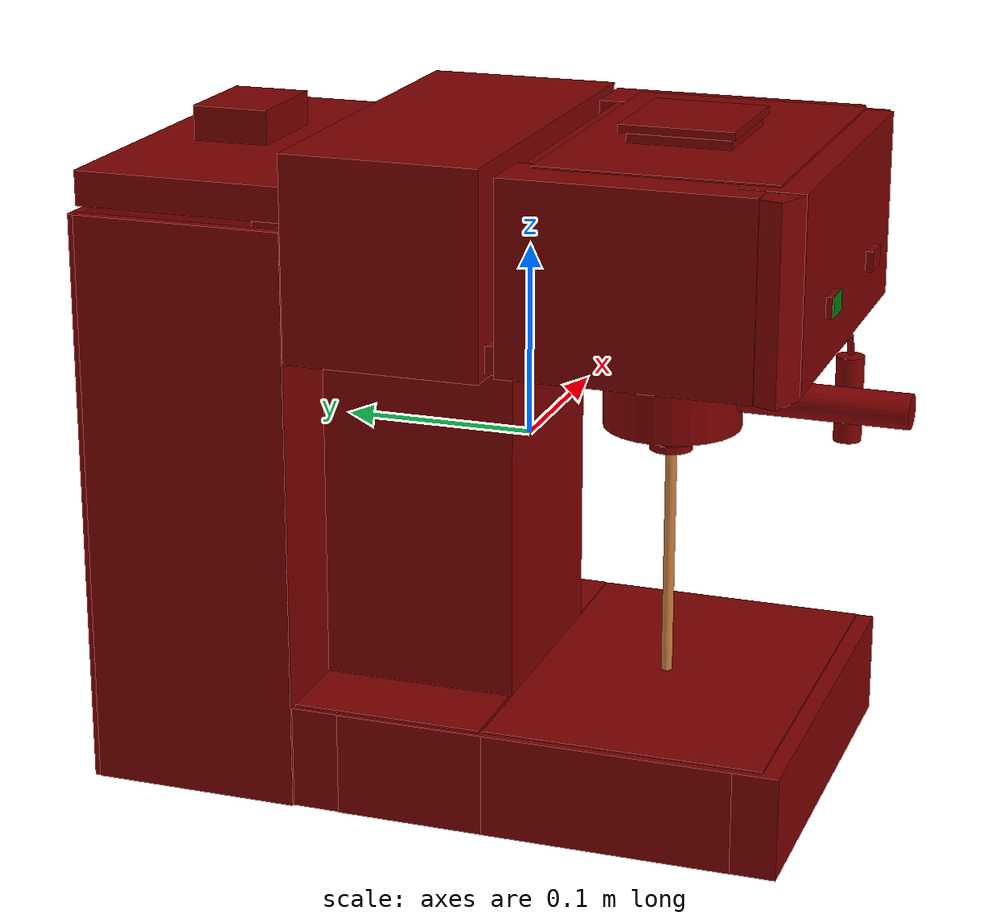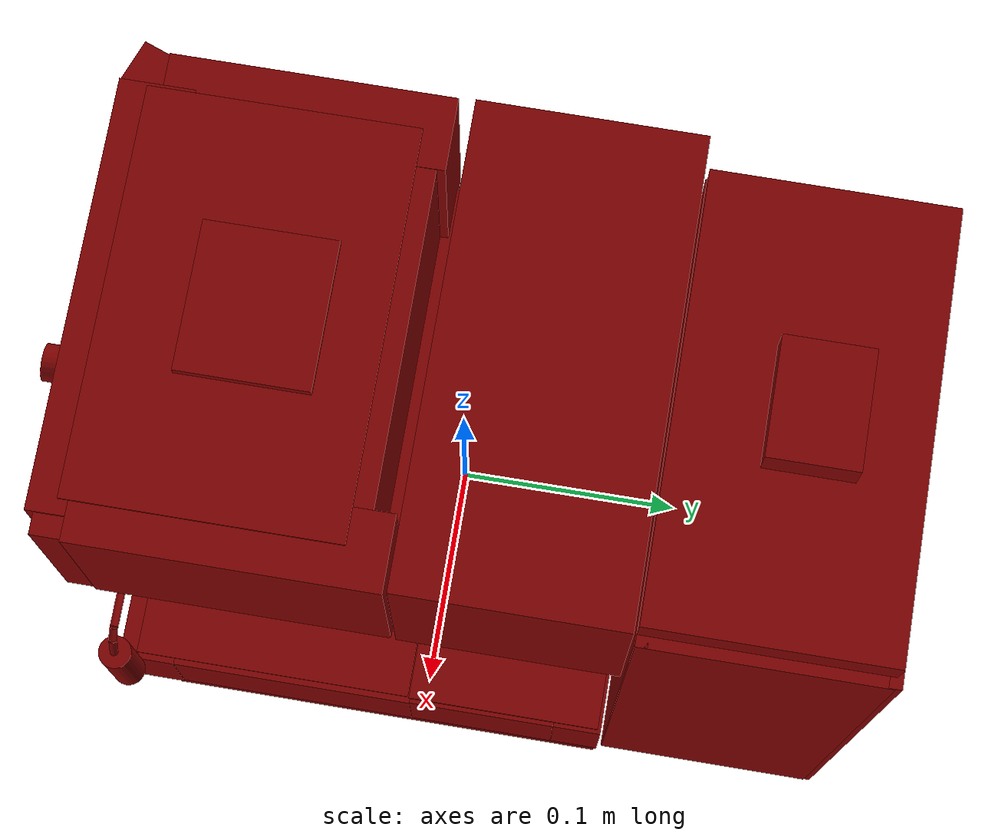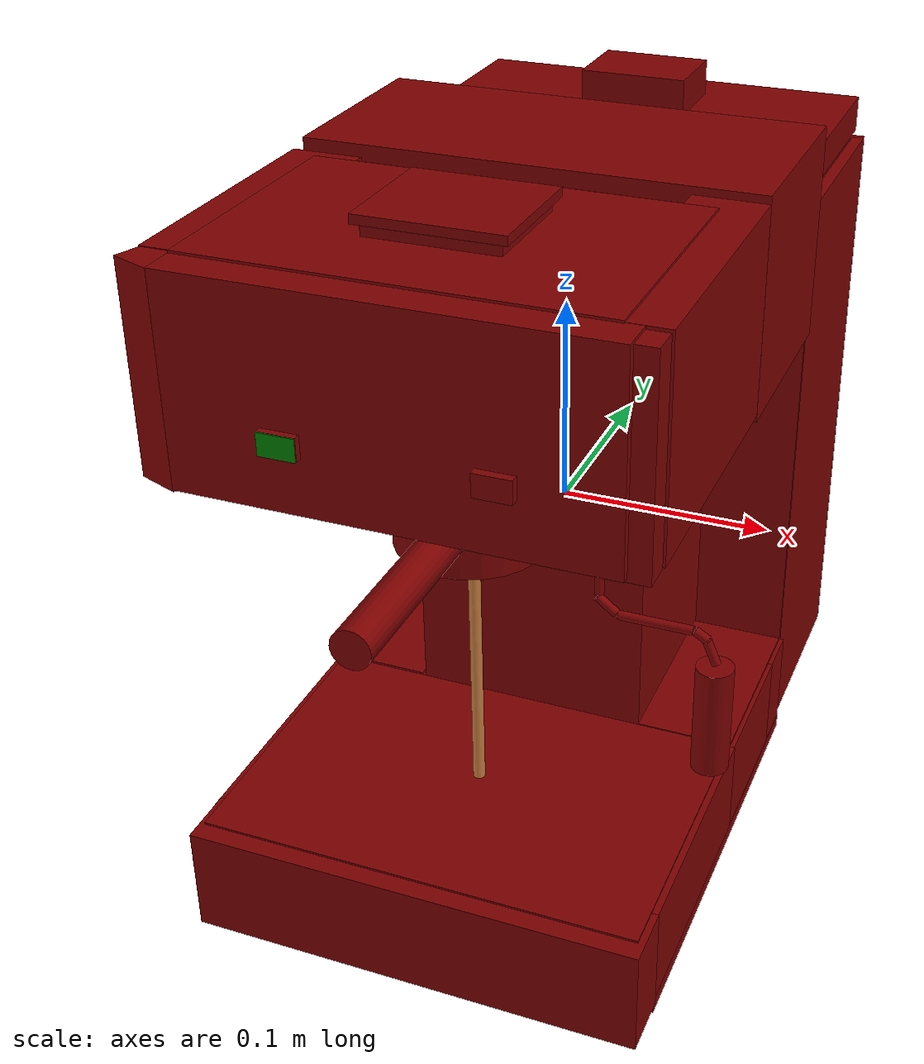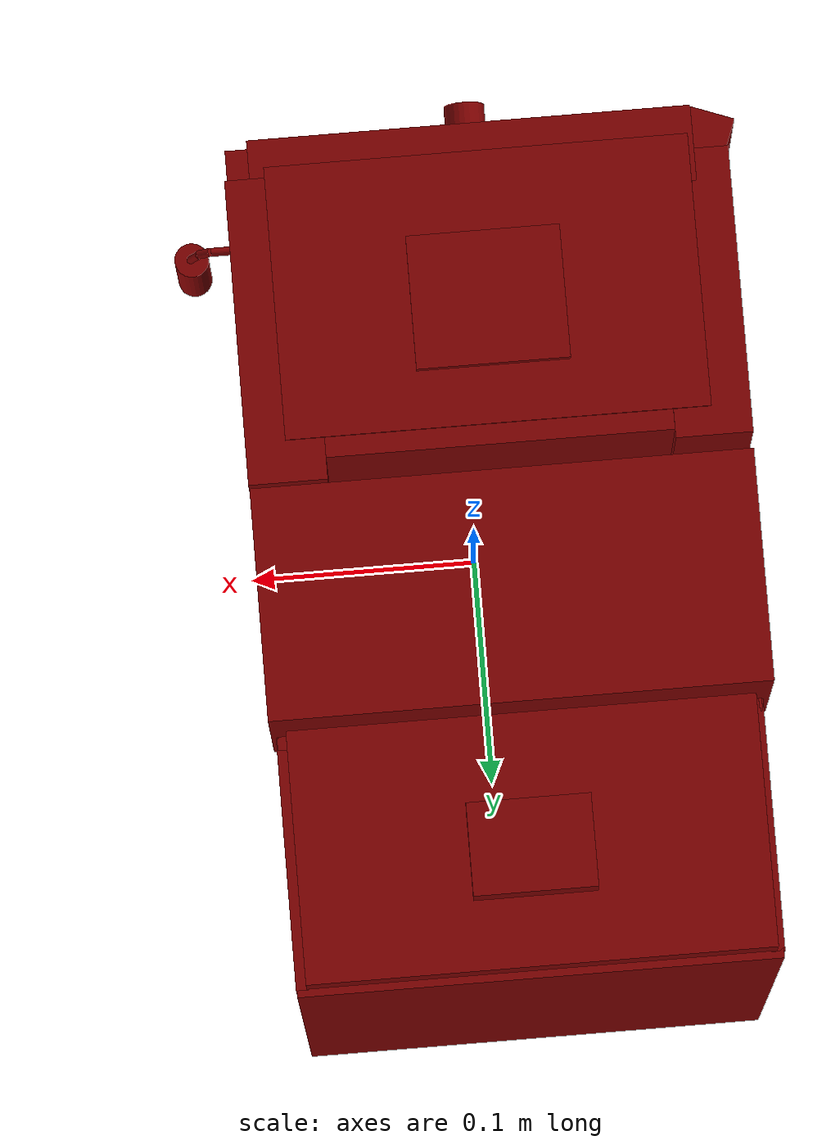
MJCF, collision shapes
<?xml version='1.0' encoding='UTF-8'?>
<mujoco model="model">
  <compiler angle="radian"/>
  <asset>
    <mesh file="visuals/Body001.obj" name="Body001_vis"/>
    <mesh file="visuals/Button001.obj" name="Button001_vis"/>
    <mesh file="visuals/Button002.obj" name="Button002_vis"/>
    <mesh file="visuals/Container001.obj" name="Container001_vis"/>
    <mesh file="visuals/Lever001.obj" name="Lever001_vis"/>
    <mesh file="visuals/Lever002.obj" name="Lever002_vis"/>
    <mesh file="visuals/Lid001.obj" name="Lid001_vis"/>
    <mesh file="visuals/Lid002.obj" name="Lid002_vis"/>
    <mesh file="visuals/Lid003.obj" name="Lid003_vis"/>
    <texture file="visuals/T_BC001.png" name="Body001_material" type="2d"/>
    <material name="Body001_material" rgba="1 1 1 1.0" texture="Body001_material" shininess="0.48321622610092163" specular="0.3103448502657381"/>
    <texture file="visuals/T_BC001.png" name="Button001_material" type="2d"/>
    <material name="Button001_material" rgba="1 1 1 1.0" texture="Button001_material" shininess="0.48321622610092163" specular="0.3103448502657381"/>
    <texture file="visuals/T_BC001.png" name="Button002_material" type="2d"/>
    <material name="Button002_material" rgba="1 1 1 1.0" texture="Button002_material" shininess="0.48321622610092163" specular="0.3103448502657381"/>
    <texture file="visuals/T_BC001.png" name="Container001_material" type="2d"/>
    <material name="Container001_material" rgba="1 1 1 1.0" texture="Container001_material" shininess="0.48321622610092163" specular="0.3103448502657381"/>
    <texture file="visuals/T_BC001.png" name="Lid003_material" type="2d"/>
    <material name="Lid003_material" rgba="1 1 1 1.0" texture="Lid003_material" shininess="0.48321622610092163" specular="0.3103448502657381"/>
    <texture file="visuals/T_BC001.png" name="Lever001_material" type="2d"/>
    <material name="Lever001_material" rgba="1 1 1 1.0" texture="Lever001_material" shininess="0.48321622610092163" specular="0.3103448502657381"/>
    <texture file="visuals/T_BC001.png" name="Lever002_material" type="2d"/>
    <material name="Lever002_material" rgba="1 1 1 1.0" texture="Lever002_material" shininess="0.48321622610092163" specular="0.3103448502657381"/>
    <texture file="visuals/T_BC001.png" name="Lid001_material" type="2d"/>
    <material name="Lid001_material" rgba="1 1 1 1.0" texture="Lid001_material" shininess="0.48321622610092163" specular="0.3103448502657381"/>
    <texture file="visuals/T_BC001.png" name="Lid002_material" type="2d"/>
    <material name="Lid002_material" rgba="1 1 1 1.0" texture="Lid002_material" shininess="0.48321622610092163" specular="0.3103448502657381"/>
  </asset>
  <default>
    <default class="visual">
      <geom conaffinity="0" contype="0" group="1" type="mesh"/>
    </default>
    <default class="collision">
      <geom group="0" rgba="0.5 0 0 0.5"/>
    </default>
    <default class="spawn">
      <geom group="0" rgba="1 1 1 0.5" contype="0" conaffinity="0"/>
      <site group="0" rgba="1 1 1 0.5"/>
    </default>
    <default class="region">
      <geom group="1" conaffinity="0" contype="0" rgba="0 1 0 0"/>
    </default>
  </default>
  <worldbody>
    <body>
      <body name="object">
        <geom class="collision" type="box" pos="-0.054994 -0.171039 0.099775" size="0.008375359699130058 0.00021982569887768477 0.005196996498852968" quat="1.0 0.0 0.0 0.0" name="start_button" rgba="0.0 0.5 0 0.5"/>
        <site rgba="0 0 0 0" size="0.009999999776482582 0.01000000536441803" pos="-0.013528 -0.080261 -0.121461" name="receptacle_place_site"/>
        <site type="cylinder" rgba="0.8 0.5 0.25 1" size="0.002856658771634102 0.08836696296930313" pos="-0.013528 -0.080261 -0.082463" name="coffee_liquid"/>
        <geom mesh="Body001_vis" type="mesh" solimp="0.998 0.998 0.001" solref="0.001 1" density="100" friction="0.95 0.3 0.1" class="visual" material="Body001_material"/>
        <geom class="collision" type="box" pos="-0.013117 -0.152401 -0.144815" size="0.10881462693214417 0.014149883762001991 0.02684701234102249" quat="1.0 0.0 0.0 0.0"/>
        <geom class="collision" type="box" pos="0.085223 -0.077408 -0.144815" size="0.010351155884563923 0.06306789815425873 0.02684696950018406" quat="1.0 0.0 0.0 0.0"/>
        <geom class="collision" type="box" pos="-0.114215 -0.079544 -0.144815" size="0.007914726622402668 0.0638255774974823 0.026846928521990776" quat="1.0 0.0 0.0 0.0"/>
        <geom class="collision" type="box" pos="-0.013181 0.035480 0.115029" size="0.10816680639982224 0.050317589193582535 0.052090954035520554" quat="1.0 0.0 0.0 0.0"/>
        <geom class="collision" type="box" pos="-0.105302 -0.085089 0.115491" size="0.016680840402841568 0.06265630573034286 0.048455651849508286" quat="1.0 0.0 0.0 0.0"/>
        <geom class="collision" type="box" pos="-0.011245 -0.150103 0.116119" size="0.09591840207576752 0.016643624752759933 0.04792249947786331" quat="1.0 0.0 0.0 0.0"/>
        <geom class="collision" type="box" pos="0.078408 -0.083357 0.115611" size="0.01700516976416111 0.06653179228305817 0.04857500642538071" quat="1.0 0.0 0.0 0.0"/>
        <geom class="collision" type="box" pos="-0.016331 -0.030309 0.072814" size="0.0962309017777443 0.11114870011806488 0.00712256645783782" quat="1.0 0.0 0.0 0.0"/>
        <geom class="collision" type="box" pos="0.069847 0.019684 -0.144815" size="0.025481464341282845 0.04093810170888901 0.02684563212096691" quat="1.0 0.0 0.0 0.0"/>
        <geom class="collision" type="box" pos="-0.013735 0.082538 -0.144815" size="0.05734142288565636 0.003191176801919937 0.02684563212096691" quat="1.0 0.0 0.0 0.0"/>
        <geom class="collision" type="box" pos="-0.013735 -0.016746 -0.144815" size="0.05734142288565636 0.003708104370161891 0.02684563212096691" quat="1.0 0.0 0.0 0.0"/>
        <geom class="collision" type="box" pos="-0.015825 -0.080951 -0.169483" size="0.09187614917755127 0.059765566140413284 0.0021778345108032227" quat="1.0 0.0 0.0 0.0"/>
        <geom class="collision" type="box" pos="-0.013196 0.073081 -0.144815" size="0.10845345258712769 0.012312578037381172 0.02684563212096691" quat="1.0 0.0 0.0 0.0"/>
        <geom class="collision" type="box" pos="-0.096648 0.019946 -0.144815" size="0.025481464341282845 0.0409381128847599 0.026845648884773254" quat="1.0 0.0 0.0 0.0"/>
        <geom class="collision" type="box" pos="0.084334 -0.153681 0.114439" size="0.009914115071296692 0.009495524689555168 0.04830016940832138" quat="1.0 0.0 0.0 0.0"/>
        <geom class="collision" type="box" pos="-0.113074 -0.153847 0.115257" size="0.009495515376329422 0.009914172813296318 0.04830016940832138" quat="0.5686398148536682 0.0 0.0 -0.8225865960121155"/>
        <geom class="collision" type="box" pos="-0.014018 -0.031434 0.118649" size="0.07952450960874557 0.00518407765775919 0.0449129156768322" quat="1.0 0.0 0.0 0.0"/>
        <geom class="collision" type="box" pos="-0.009539 -0.028108 -0.171619" size="0.10511379688978195 0.1123671904206276 0.003568801796063781" quat="1.0 0.0 0.0 0.0"/>
        <geom class="collision" type="box" pos="-0.013024 0.035480 -0.055497" size="0.05856454372406006 0.050317589193582535 0.1207728460431099" quat="1.0 0.0 0.0 0.0"/>
        <geom class="collision" type="cylinder" pos="-0.013533 -0.079915 0.058403" size="0.04938850179314613 0.008941341191530228" quat="1.0 0.0 0.0 0.0"/>
        <geom class="collision" type="cylinder" pos="0.067571 -0.143409 0.063547" size="0.0074094850569963455 0.005022606812417507" quat="1.0 0.0 0.0 0.0"/>
        <body name="Button001">
          <joint axis="0.0 1.0 0.0" pos="-0.056242 -0.168444 0.099785" limited="true" name="Button001_joint" range="0.0 0.002" type="slide" damping="1" frictionloss="1" armature=".01" stiffness="0.05"/>
          <geom mesh="Button001_vis" type="mesh" solimp="0.998 0.998 0.001" solref="0.001 1" density="100" friction="0.95 0.3 0.1" class="visual" material="Button001_material"/>
          <geom class="collision" type="box" pos="-0.054994 -0.168947 0.099775" size="0.008375359699130058 0.0015938704600557685 0.005196996498852968" quat="1.0 0.0 0.0 0.0"/>
        </body>
        <body name="Button002">
          <joint axis="0.0 1.0 0.0" pos="0.034224 -0.168444 0.100381" limited="true" name="Button002_joint" range="0.0 0.002" type="slide" damping="1" frictionloss="1" armature=".01" stiffness="0.05"/>
          <geom mesh="Button002_vis" type="mesh" solimp="0.998 0.998 0.001" solref="0.001 1" density="100" friction="0.95 0.3 0.1" class="visual" material="Button002_material"/>
          <geom class="collision" type="box" pos="0.034379 -0.169306 0.099775" size="0.008375358767807484 0.0019528644625097513 0.005196996498852968" quat="1.0 0.0 0.0 0.0"/>
        </body>
        <body name="Container001">
          <joint axis="0.0 0.0 1.0" pos="-0.013156 0.143773 -0.022431" limited="true" name="Container001_joint" range="0.0 0.06" type="slide" damping="1" frictionloss="1" armature=".01" stiffness="0.05"/>
          <geom mesh="Container001_vis" type="mesh" solimp="0.998 0.998 0.001" solref="0.001 1" density="100" friction="0.95 0.3 0.1" class="visual" material="Container001_material"/>
          <geom class="collision" type="box" pos="-0.012345 0.090626 -0.023505" size="0.1047859638929367 0.0029388372786343098 0.15102222561836243" quat="1.0 0.0 0.0 0.0"/>
          <geom class="collision" type="box" pos="-0.012345 0.197612 -0.023505" size="0.1047859638929367 0.0029388372786343098 0.15102222561836243" quat="1.0 0.0 0.0 0.0"/>
          <geom class="collision" type="box" pos="-0.114747 0.142865 -0.023505" size="0.0029388456605374813 0.05468353256583214 0.15102222561836243" quat="1.0 0.0 0.0 0.0"/>
          <geom class="collision" type="box" pos="0.089829 0.142865 -0.023505" size="0.0029388456605374813 0.05468353256583214 0.15102222561836243" quat="1.0 0.0 0.0 0.0"/>
          <geom class="collision" type="box" pos="-0.012905 0.142865 -0.171429" size="0.10103803873062134 0.05468355491757393 0.003098243148997426" quat="1.0 0.0 0.0 0.0"/>
          <body name="Lid003">
            <joint axis="0.0 0.0 1.0" pos="-0.013156 0.143773 0.148686" limited="true" name="Lid003_joint" range="0.0 0.08" type="slide" damping="1" frictionloss="1" armature=".01" stiffness="0.05"/>
            <geom mesh="Lid003_vis" type="mesh" solimp="0.998 0.998 0.001" solref="0.001 1" density="100" friction="0.95 0.3 0.1" class="visual" material="Lid003_material"/>
            <geom class="collision" type="box" pos="-0.012905 0.142865 0.140052" size="0.10103803873062134 0.05468355491757393 0.008904940448701382" quat="1.0 0.0 0.0 0.0"/>
            <geom class="collision" type="box" pos="-0.012644 0.147474 0.159638" size="0.02669331058859825 0.020041514188051224 0.008904940448701382" quat="1.0 0.0 0.0 0.0"/>
          </body>
        </body>
        <body name="Lever001">
          <joint axis="0.0 0.0 1.0" pos="-0.013533 -0.080322 0.038797" limited="true" name="Lever001_joint" range="-0.7853981633974483 0.7853981633974483" type="hinge" damping="1" frictionloss="1" armature=".01" stiffness="0.01" springref="-0.1"/>
          <geom mesh="Lever001_vis" type="mesh" solimp="0.998 0.998 0.001" solref="0.001 1" density="100" friction="0.95 0.3 0.1" class="visual" material="Lever001_material"/>
          <geom class="collision" type="cylinder" pos="-0.011769 -0.149727 0.036175" size="0.009019842371344566 0.05160938575863838" quat="0.5013774633407593 -0.49861934781074524 0.5013785362243652 0.498617023229599"/>
          <geom class="collision" type="cylinder" pos="-0.013758 -0.080535 0.032434" size="0.03529611602425575 0.014974398538470268" quat="1.0 0.0 0.0 0.0"/>
          <geom class="collision" type="cylinder" pos="-0.013484 -0.080090 0.013288" size="0.015935303643345833 0.003136536804959178" quat="1.0 0.0 0.0 0.0"/>
          <geom class="collision" type="cylinder" pos="-0.013484 -0.080090 0.006513" size="0.011108371429145336 0.0020480183884501457" quat="1.0 0.0 0.0 0.0"/>
        </body>
        <body name="Lever002">
          <joint axis="0.0 0.0 1.0" pos="0.067218 -0.143670 0.061381" limited="true" name="Lever002_joint" range="-1.5707963267948966 1.5707963267948966" type="hinge" damping="1" frictionloss="1" armature=".01" stiffness="0.01" springref="-0.1"/>
          <geom mesh="Lever002_vis" type="mesh" solimp="0.998 0.998 0.001" solref="0.001 1" density="100" friction="0.95 0.3 0.1" class="visual" material="Lever002_material"/>
          <geom class="collision" type="cylinder" pos="0.115223 -0.143814 -0.000909" size="0.007664957549422979 0.02387719601392746" quat="0.4995230436325073 0.0 0.0 -0.8663005828857422"/>
          <geom class="collision" type="cylinder" pos="0.113558 -0.143883 0.029261" size="0.0019141915254294872 0.005277842283248901" quat="0.9795157313346863 0.0 -0.20136758685112 0.0"/>
          <geom class="collision" type="cylinder" pos="0.090766 -0.143883 0.037501" size="0.0019141919910907745 0.01519704144448042" quat="0.7067901492118835 0.0 0.7074232697486877 0.0"/>
          <geom class="collision" type="cylinder" pos="0.067278 -0.143883 0.051452" size="0.0019141924567520618 0.005725919269025326" quat="0.0065132672898471355 0.0 0.99997878074646 0.0"/>
          <geom class="collision" type="cylinder" pos="0.070675 -0.143883 0.041123" size="0.0019141929224133492 0.0049094706773757935" quat="0.43733489513397217 0.0 0.8992987275123596 0.0"/>
          <geom class="collision" type="cylinder" pos="0.109137 -0.143883 0.036051" size="0.0019141915254294872 0.0030728932470083237" quat="0.8693852424621582 0.0 -0.4941348731517792 0.0"/>
        </body>
        <body name="Lid001">
          <joint axis="0.0 0.0 1.0" pos="-0.013280 -0.094169 0.168776" limited="true" name="Lid001_joint" range="0.0 0.06" type="slide" damping="1" frictionloss="1" armature=".01" stiffness="0.05" springref="-10"/>
          <geom mesh="Lid001_vis" type="mesh" solimp="0.998 0.998 0.001" solref="0.001 1" density="100" friction="0.95 0.3 0.1" class="visual" material="Lid001_material"/>
          <geom class="collision" type="box" pos="-0.013342 -0.094352 0.166131" size="0.09151767194271088 0.059615522623062134 0.000565219612326473" quat="1.0 0.0 0.0 0.0"/>
          <geom class="collision" type="box" pos="-0.013274 -0.088076 0.174156" size="0.03309253975749016 0.02905428782105446 0.002113808412104845" quat="1.0 0.0 0.0 0.0"/>
          <geom class="collision" type="box" pos="-0.013131 -0.088563 0.169249" size="0.02989024668931961 0.026350321248173714 0.0027013972867280245" quat="1.0 0.0 0.0 0.0"/>
        </body>
        <body name="Lid002">
          <joint axis="0.0 0.0 1.0" pos="-0.017703 -0.067787 -0.117781" limited="true" name="Lid002_joint" range="0.0 0.06" type="slide" damping="1" frictionloss="1" armature=".01" stiffness="0.05" springref="-15"/>
          <geom mesh="Lid002_vis" type="mesh" solimp="0.998 0.998 0.001" solref="0.001 1" density="100" friction="0.95 0.3 0.1" class="visual" material="Lid002_material"/>
          <geom class="collision" type="box" pos="-0.013261 -0.086744 -0.116996" size="0.10580109804868698 0.07115589082241058 0.0005079268012195826" quat="1.0 0.0 0.0 0.0"/>
          <geom class="collision" type="box" pos="0.069322 0.034368 -0.117485" size="0.02375517040491104 0.049318477511405945 0.0009968356462195516" quat="1.0 0.0 0.0 0.0"/>
          <geom class="collision" type="box" pos="-0.096578 0.035157 -0.117485" size="0.02276686020195484 0.049318451434373856 0.0009968351805582643" quat="1.0 0.0 0.0 0.0"/>
        </body>
        <geom class="region" name="reg_main" type="box" pos="-0.0136275 0.017078499999999996 -0.0001260000000000011" size="0.1086425 0.1837595 0.17557299999999998"/>
      </body>
    </body>
  </worldbody>
  <actuator>
    <motor name="Button001_joint_actuator" joint="Button001_joint" gear="0.5"/>
    <motor name="Button002_joint_actuator" joint="Button002_joint" gear="0.5"/>
    <motor name="Container001_joint_actuator" joint="Container001_joint" gear="10"/>
    <motor name="Lever001_joint_actuator" joint="Lever001_joint" gear="10"/>
    <motor name="Lever002_joint_actuator" joint="Lever002_joint" gear="10"/>
    <motor name="Lid001_joint_actuator" joint="Lid001_joint" gear="10"/>
    <motor name="Lid002_joint_actuator" joint="Lid002_joint" gear="10"/>
    <motor name="Lid003_joint_actuator" joint="Lid003_joint" gear="10"/>
  </actuator>
</mujoco>
